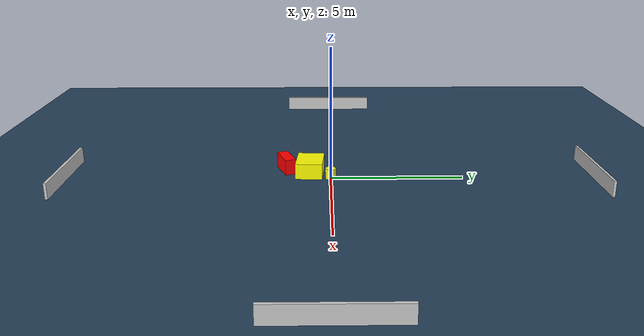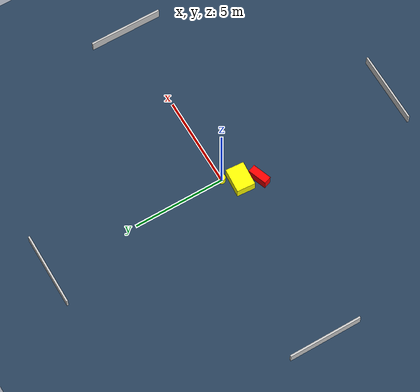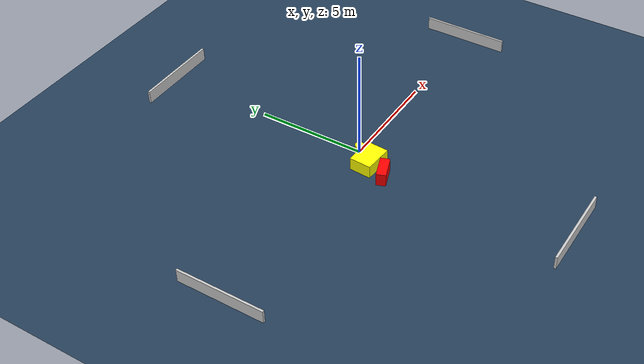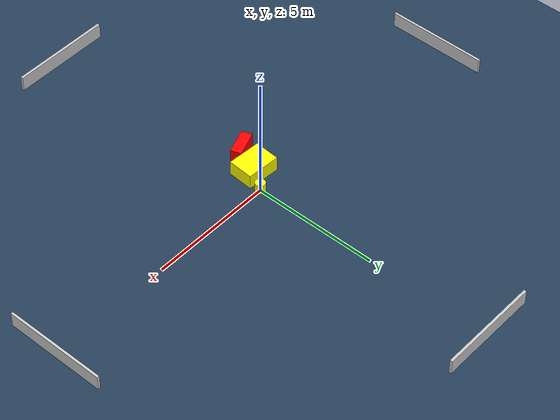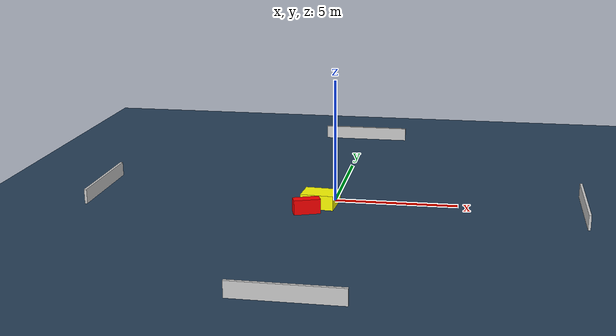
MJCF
<?xml version="1.0" ?>
<mujoco model="generated_environment">
  <option timestep="0.01" integrator="RK4" cone="elliptic"/>
  <default>
    <geom density="1"/>
  </default>
  <asset>
    <texture builtin="gradient" height="3072" name="skybox" rgb1="0.3 0.5 0.7" rgb2="0 0 0" type="skybox" width="512"/>
    <texture builtin="checker" height="300" name="groundplane" rgb1="0.2 0.3 0.4" rgb2="0.1 0.2 0.3" type="2d" width="300"/>
    <material name="groundplane" reflectance="0.2" texrepeat="5 5" texture="groundplane"/>
  </asset>
  <worldbody>
    <light dir="0 0 -1" directional="true" pos="0 0 1.5"/>
    <geom condim="3" friction="0.5 0.005 0.001" material="groundplane" name="floor" pos="0 0 0" size="0 0 0.05" type="plane"/>
    <body name="walls">
      <geom name="wall_1" condim="4" pos="-10.0 0.0 0.3" rgba="0.800000011920929 0.800000011920929 0.800000011920929 1.0" size="0.05 2.0 0.3" type="box"/>
      <geom name="wall_2" condim="4" pos="10.0 0.0 0.3" rgba="0.800000011920929 0.800000011920929 0.800000011920929 1.0" size="0.05 2.0 0.3" type="box"/>
      <geom name="wall_3" condim="4" pos="0.0 -10.0 0.3" rgba="0.800000011920929 0.800000011920929 0.800000011920929 1.0" size="2.0 0.05 0.3" type="box"/>
      <geom name="wall_4" condim="4" pos="0.0 10.0 0.3" rgba="0.800000011920929 0.800000011920929 0.800000011920929 1.0" size="2.0 0.05 0.3" type="box"/>
    </body>
    <body name="robot">
      <joint name="joint_x" type="slide" pos="0 0 0" axis="1 0 0"/>
      <joint name="joint_y" type="slide" pos="0 0 0" axis="0 1 0"/>
      <geom name="robot" type="cylinder" pos="0.0 0.0 0.2" size="0.2 0.2 0.0" mass="5.0" friction="1.0 0.005 0.0001" condim="4" rgba="1.0 1.0 0.0 1.0"/>
    </body>
    <body name="obstacle_1_movable">
      <geom name="obstacle_1_movable" condim="4" pos="-0.5309692374661177 -0.7855678500024348 0.3" euler="0 0 176.09781810366547" friction="0.0 0.005 0.001" rgba="1.0 1.0 0.0 1.0" size="0.6697651588617413 0.5061814460143611 0.3" type="box" mass="0.1"/>
      <joint type="free"/>
    </body>
    <body name="obstacle_2_static">
      <geom name="obstacle_2_static" condim="4" pos="-0.8981249455032521 -1.7017747562134216 0.3" euler="0 0 110.1944647542813" friction="0.0 0.005 0.001" rgba="1.0 0.0 0.0 1.0" size="0.21474575779687388 0.5334370662149379 0.3" type="box"/>
    </body>
  </worldbody>
  <actuator>
    <motor name="actuator_x" joint="joint_x" gear="1" ctrlrange="-1 1"/>
    <motor name="actuator_y" joint="joint_y" gear="1" ctrlrange="-1 1"/>
  </actuator>
</mujoco>
